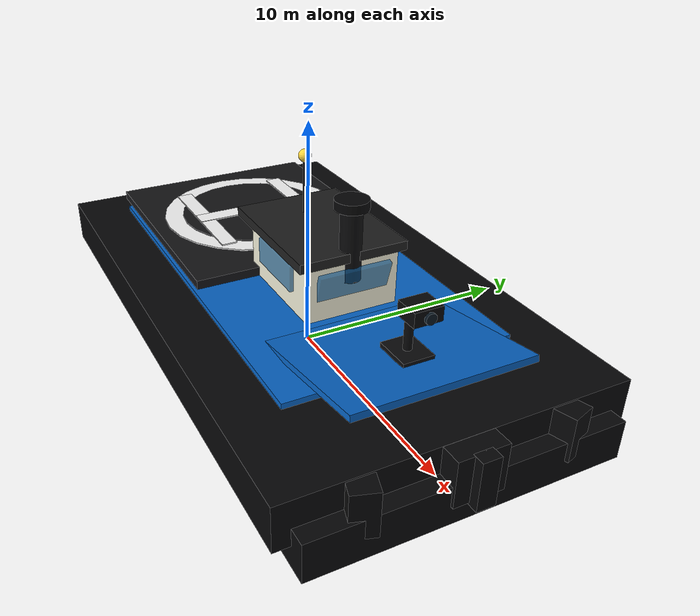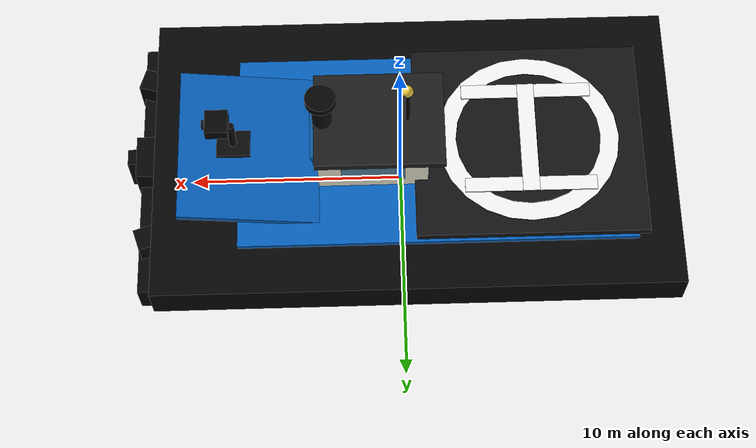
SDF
<?xml version='1.0' encoding='utf-8'?>
<sdf version="1.8">
  <model name="cooperative_own_01_boat">
    <pose>0 0 1.70625 0 0 0</pose>
    <link name="hull">
      <enable_wind>true</enable_wind>
      <inertial>
        <mass>8897.85</mass>
        <inertia>
          <ixx>76690.56915</ixx>
          <iyy>162403.5582</iyy>
          <izz>198493.2378</izz>
          <ixy>0</ixy>
          <ixz>0</ixz>
          <iyz>0</iyz>
        </inertia>
      </inertial>
      <collision name="hull_collision">
        <pose>0 0 -0.24375 0 0 0</pose>
        <geometry>
          <box>
            <size>21.879 12.2265 2.4375</size>
          </box>
        </geometry>
      </collision>
      <visual name="lower_hull">
        <pose>-0.32175 0 -0.78 0 0 0</pose>
        <geometry>
          <box>
            <size>25.0965 12.7413 1.638</size>
          </box>
        </geometry>
        <material>
          <ambient>0.015 0.015 0.018 1</ambient>
          <diffuse>0.025 0.025 0.030 1</diffuse>
          <specular>0.1 0.1 0.1 1</specular>
        </material>
      </visual>
      <visual name="upper_hull">
        <pose>-0.6435 0 0.24375 0 0 0</pose>
        <geometry>
          <box>
            <size>24.3243 14.05404 1.872</size>
          </box>
        </geometry>
        <material>
          <ambient>0.015 0.015 0.018 1</ambient>
          <diffuse>0.025 0.025 0.030 1</diffuse>
          <specular>0.18 0.18 0.2 1</specular>
        </material>
      </visual>
      <visual name="bow_side_left">
        <pose>9.3951 3.3462 0.195 0 0 0.31</pose>
        <geometry>
          <box>
            <size>5.9202 1.0296 1.8525</size>
          </box>
        </geometry>
        <material>
          <ambient>0.015 0.015 0.018 1</ambient>
          <diffuse>0.025 0.025 0.030 1</diffuse>
          <specular>0.18 0.18 0.2 1</specular>
        </material>
      </visual>
      <visual name="bow_side_right">
        <pose>9.3951 -3.3462 0.195 0 0 -0.31</pose>
        <geometry>
          <box>
            <size>5.9202 1.0296 1.8525</size>
          </box>
        </geometry>
        <material>
          <ambient>0.015 0.015 0.018 1</ambient>
          <diffuse>0.025 0.025 0.030 1</diffuse>
          <specular>0.18 0.18 0.2 1</specular>
        </material>
      </visual>
      <visual name="bow_center_nose">
        <pose>11.7117 0 0.195 0 0 0</pose>
        <geometry>
          <box>
            <size>1.287 2.0592 1.95</size>
          </box>
        </geometry>
        <material>
          <ambient>0.015 0.015 0.018 1</ambient>
          <diffuse>0.025 0.025 0.030 1</diffuse>
          <specular>0.16 0.16 0.18 1</specular>
        </material>
      </visual>
      <visual name="bow_keel_line">
        <pose>9.97425 0 -1.6575 0 1.5708 0</pose>
        <geometry>
          <cylinder>
            <radius>0.1365</radius>
            <length>3.51</length>
          </cylinder>
        </geometry>
        <material>
          <ambient>0.006 0.006 0.008 1</ambient>
          <diffuse>0.012 0.012 0.014 1</diffuse>
        </material>
      </visual>
      <visual name="foredeck_slope">
        <pose>6.75675 0 1.755 0 -0.16 0</pose>
        <geometry>
          <box>
            <size>7.0785 7.4646 0.268125</size>
          </box>
        </geometry>
        <material>
          <ambient>0.02 0.18 0.35 1</ambient>
          <diffuse>0.03 0.40 0.78 1</diffuse>
          <specular>0.08 0.08 0.08 1</specular>
        </material>
      </visual>
      <visual name="bow_stem">
        <pose>12.4839 0 0.14625 0 0 0</pose>
        <geometry>
          <box>
            <size>0.5148 0.7722 2.0475</size>
          </box>
        </geometry>
        <material>
          <ambient>0.015 0.015 0.018 1</ambient>
          <diffuse>0.025 0.025 0.030 1</diffuse>
          <specular>0.16 0.16 0.18 1</specular>
        </material>
      </visual>
      <visual name="hull_side_fairing_left">
        <pose>0.32175 5.5341 0.195 0 0 0.035</pose>
        <geometry>
          <box>
            <size>17.05275 0.5148 1.0725</size>
          </box>
        </geometry>
        <material>
          <ambient>0.015 0.015 0.018 1</ambient>
          <diffuse>0.025 0.025 0.030 1</diffuse>
          <specular>0.14 0.14 0.16 1</specular>
        </material>
      </visual>
      <visual name="hull_side_fairing_right">
        <pose>0.32175 -5.5341 0.195 0 0 -0.035</pose>
        <geometry>
          <box>
            <size>17.05275 0.5148 1.0725</size>
          </box>
        </geometry>
        <material>
          <ambient>0.015 0.015 0.018 1</ambient>
          <diffuse>0.025 0.025 0.030 1</diffuse>
          <specular>0.14 0.14 0.16 1</specular>
        </material>
      </visual>
      <visual name="deck">
        <pose>-1.60875 0 1.21875 0 0 0</pose>
        <geometry>
          <box>
            <size>18.33975 9.6525 0.39</size>
          </box>
        </geometry>
        <material>
          <ambient>0.02 0.18 0.35 1</ambient>
          <diffuse>0.03 0.40 0.78 1</diffuse>
          <specular>0.08 0.08 0.08 1</specular>
        </material>
      </visual>
      <visual name="cabin_body">
        <pose>1.287 0 2.8275 0 0 0</pose>
        <geometry>
          <box>
            <size>5.0193 3.9897 2.34</size>
          </box>
        </geometry>
        <material>
          <ambient>0.86 0.86 0.8 1</ambient>
          <diffuse>0.96 0.95 0.86 1</diffuse>
          <specular>0.28 0.28 0.24 1</specular>
        </material>
      </visual>
      <visual name="front_window">
        <pose>3.861 0 3.12 0 0.28 0</pose>
        <geometry>
          <box>
            <size>0.225225 3.0888 1.17</size>
          </box>
        </geometry>
        <material>
          <ambient>0.05 0.22 0.36 0.65</ambient>
          <diffuse>0.08 0.38 0.62 0.65</diffuse>
          <specular>0.9 0.95 1 1</specular>
        </material>
      </visual>
      <visual name="left_window">
        <pose>1.287 2.091375 3.12 0 0 0</pose>
        <geometry>
          <box>
            <size>2.89575 0.160875 1.0725</size>
          </box>
        </geometry>
        <material>
          <ambient>0.05 0.22 0.36 0.65</ambient>
          <diffuse>0.08 0.38 0.62 0.65</diffuse>
          <specular>0.9 0.95 1 1</specular>
        </material>
      </visual>
      <visual name="right_window">
        <pose>1.287 -2.091375 3.12 0 0 0</pose>
        <geometry>
          <box>
            <size>2.89575 0.160875 1.0725</size>
          </box>
        </geometry>
        <material>
          <ambient>0.05 0.22 0.36 0.65</ambient>
          <diffuse>0.08 0.38 0.62 0.65</diffuse>
          <specular>0.9 0.95 1 1</specular>
        </material>
      </visual>
      <visual name="cabin_roof">
        <pose>0.96525 0 4.14375 0 0 0</pose>
        <geometry>
          <box>
            <size>5.9202 4.6332 0.39</size>
          </box>
        </geometry>
        <material>
          <ambient>0.08 0.08 0.08 1</ambient>
          <diffuse>0.12 0.12 0.12 1</diffuse>
          <specular>0.18 0.18 0.18 1</specular>
        </material>
      </visual>
      <collision name="landing_pad_collision">
        <pose>-5.9202 0 1.755 0 0 0</pose>
        <geometry>
          <box>
            <size>10.9395 9.97425 1.17</size>
          </box>
        </geometry>
        <surface>
          <contact>
            <ode>
              <min_depth>0.001</min_depth>
              <max_vel>0</max_vel>
            </ode>
          </contact>
          <friction>
            <ode>
              <mu>1.5</mu>
              <mu2>1.5</mu2>
            </ode>
          </friction>
        </surface>
      </collision>
      <visual name="landing_pad_visual">
        <pose>-5.9202 0 1.8525 0 0 0</pose>
        <geometry>
          <box>
            <size>10.608 9.594 0.39</size>
          </box>
        </geometry>
        <material>
          <ambient>0.04 0.04 0.045 1</ambient>
          <diffuse>0.08 0.08 0.09 1</diffuse>
          <specular>0.08 0.08 0.08 1</specular>
        </material>
      </visual>
      <visual name="landing_pad_ring">
        <pose>-5.9202 0 2.120625 0 0 0</pose>
        <geometry>
          <cylinder>
            <radius>4.212</radius>
            <length>0.0585</length>
          </cylinder>
        </geometry>
        <material>
          <ambient>1 1 1 1</ambient>
          <diffuse>1 1 1 1</diffuse>
        </material>
      </visual>
      <visual name="landing_pad_center">
        <pose>-5.9202 0 2.169375 0 0 0</pose>
        <geometry>
          <cylinder>
            <radius>3.354</radius>
            <length>0.06825</length>
          </cylinder>
        </geometry>
        <material>
          <ambient>0.04 0.04 0.045 1</ambient>
          <diffuse>0.08 0.08 0.09 1</diffuse>
        </material>
      </visual>
      <visual name="landing_h_left">
        <pose>-5.9202 2.418 2.23275 0 0 0</pose>
        <geometry>
          <box>
            <size>6.045 0.702 0.0585</size>
          </box>
        </geometry>
        <material>
          <ambient>1 1 1 1</ambient>
          <diffuse>1 1 1 1</diffuse>
        </material>
      </visual>
      <visual name="landing_h_right">
        <pose>-5.9202 -2.418 2.23275 0 0 0</pose>
        <geometry>
          <box>
            <size>6.045 0.702 0.0585</size>
          </box>
        </geometry>
        <material>
          <ambient>1 1 1 1</ambient>
          <diffuse>1 1 1 1</diffuse>
        </material>
      </visual>
      <visual name="landing_h_crossbar">
        <pose>-5.9202 0 2.25225 0 0 0</pose>
        <geometry>
          <box>
            <size>0.78 5.538 0.0585</size>
          </box>
        </geometry>
        <material>
          <ambient>1 1 1 1</ambient>
          <diffuse>1 1 1 1</diffuse>
        </material>
      </visual>
      <visual name="mast">
        <pose>-0.32175 0 5.3625 0 0 0</pose>
        <geometry>
          <cylinder>
            <radius>0.08775</radius>
            <length>2.68125</length>
          </cylinder>
        </geometry>
        <material>
          <ambient>0.02 0.02 0.02 1</ambient>
          <diffuse>0.02 0.02 0.02 1</diffuse>
        </material>
      </visual>
      <visual name="nav_light">
        <pose>-0.32175 0 6.77625 0 0 0</pose>
        <geometry>
          <sphere>
            <radius>0.268125</radius>
          </sphere>
        </geometry>
        <material>
          <ambient>1 0.85 0.25 1</ambient>
          <diffuse>1 0.85 0.25 1</diffuse>
          <specular>1 0.9 0.5 1</specular>
        </material>
      </visual>
      <visual name="lidar_mount">
        <pose>3.53925 0 4.5825 0 0 0</pose>
        <geometry>
          <cylinder>
            <radius>0.43875</radius>
            <length>3.0225</length>
          </cylinder>
        </geometry>
        <material>
          <ambient>0.02 0.02 0.022 1</ambient>
          <diffuse>0.04 0.04 0.045 1</diffuse>
          <specular>0.2 0.2 0.22 1</specular>
        </material>
      </visual>
      <visual name="lidar_body">
        <pose>3.53925 0 6.19125 0 0 0</pose>
        <geometry>
          <cylinder>
            <radius>0.6825</radius>
            <length>0.39</length>
          </cylinder>
        </geometry>
        <material>
          <ambient>0.01 0.01 0.012 1</ambient>
          <diffuse>0.02 0.02 0.024 1</diffuse>
          <specular>0.35 0.35 0.38 1</specular>
        </material>
      </visual>
      <visual name="front_camera_mount_base">
        <pose>7.722 0 2.218125 0 0 0</pose>
        <geometry>
          <box>
            <size>1.5444 1.287 0.195</size>
          </box>
        </geometry>
        <material>
          <ambient>0.025 0.025 0.028 1</ambient>
          <diffuse>0.04 0.04 0.045 1</diffuse>
          <specular>0.18 0.18 0.2 1</specular>
        </material>
      </visual>
      <visual name="front_camera_mount_post">
        <pose>7.722 0 3.16875 0 0 0</pose>
        <geometry>
          <cylinder>
            <radius>0.170625</radius>
            <length>1.70625</length>
          </cylinder>
        </geometry>
        <material>
          <ambient>0.018 0.018 0.02 1</ambient>
          <diffuse>0.03 0.03 0.034 1</diffuse>
          <specular>0.18 0.18 0.2 1</specular>
        </material>
      </visual>
      <visual name="front_camera_body">
        <pose>8.30115 0 4.1925 0 0 0</pose>
        <geometry>
          <box>
            <size>1.0296 1.1583 0.585</size>
          </box>
        </geometry>
        <material>
          <ambient>0.015 0.015 0.018 1</ambient>
          <diffuse>0.025 0.025 0.03 1</diffuse>
          <specular>0.2 0.2 0.22 1</specular>
        </material>
      </visual>
      <visual name="front_camera_lens">
        <pose>8.912475 0 4.1925 0 1.5708 0</pose>
        <geometry>
          <cylinder>
            <radius>0.219375</radius>
            <length>0.121875</length>
          </cylinder>
        </geometry>
        <material>
          <ambient>0.02 0.04 0.06 1</ambient>
          <diffuse>0.03 0.08 0.12 1</diffuse>
          <specular>0.8 0.9 1 1</specular>
        </material>
      </visual>
      <sensor name="front_camera" type="camera">
        <pose>9.041175 0 4.1925 0 0 0</pose>
        <topic>/defense/own_01/front_camera</topic>
        <update_rate>30</update_rate>
        <camera>
          <horizontal_fov>1.047</horizontal_fov>
          <image>
            <width>320</width>
            <height>180</height>
            <format>R8G8B8</format>
          </image>
          <clip>
            <near>0.05</near>
            <far>200</far>
          </clip>
        </camera>
        <always_on>true</always_on>
        <visualize>false</visualize>
      </sensor>
      <sensor name="front_lidar" type="gpu_lidar">
        <gz_frame_id>own_01/hull/front_lidar</gz_frame_id>
        <pose>3.53925 0 6.09375 0 0 0</pose>
        <topic>/defense/own_01/scan</topic>
        <update_rate>10</update_rate>
        <ray>
          <scan>
            <horizontal>
              <samples>361</samples>
              <resolution>1</resolution>
              <min_angle>-1.5708</min_angle>
              <max_angle>1.5708</max_angle>
            </horizontal>
          </scan>
          <range>
            <min>0.35</min>
            <max>80</max>
            <resolution>0.02</resolution>
          </range>
          <noise>
            <type>gaussian</type>
            <mean>0</mean>
            <stddev>0.01</stddev>
          </noise>
          <visibility_mask>0x01</visibility_mask>
        </ray>
        <always_on>true</always_on>
        <visualize>false</visualize>
      </sensor>
    </link>
    <plugin filename="gz-sim-velocity-control-system" name="gz::sim::systems::VelocityControl">
      <topic>/model/own_01/cmd_vel</topic>
      <control_linear_velocity>true</control_linear_velocity>
      <control_angular_velocity>true</control_angular_velocity>
    </plugin>
    <plugin filename="gz-sim-pose-publisher-system" name="gz::sim::systems::PosePublisher">
      <publish_model_pose>true</publish_model_pose>
      <publish_link_pose>false</publish_link_pose>
      <publish_collision_pose>false</publish_collision_pose>
      <publish_visual_pose>false</publish_visual_pose>
      <publish_nested_model_pose>false</publish_nested_model_pose>
      <publish_sensor_pose>false</publish_sensor_pose>
      <use_pose_vector_msg>false</use_pose_vector_msg>
      /defense/own_01/pose
      <update_frequency>30</update_frequency>
    </plugin>
    <plugin filename="libBoatWaveFollower.so" name="gz::sim::systems::BoatWaveFollower">
      <mean_z>2.145</mean_z>
      <heave_amplitude>0.429</heave_amplitude>
      <roll_amplitude>0.055</roll_amplitude>
      <pitch_amplitude>0.045</pitch_amplitude>
      <primary_frequency>1.1</primary_frequency>
      <secondary_frequency>1.7</secondary_frequency>
      <wave_number_x>0.35</wave_number_x>
      <wave_number_y>0.22</wave_number_y>
    </plugin>
  </model>
</sdf>
